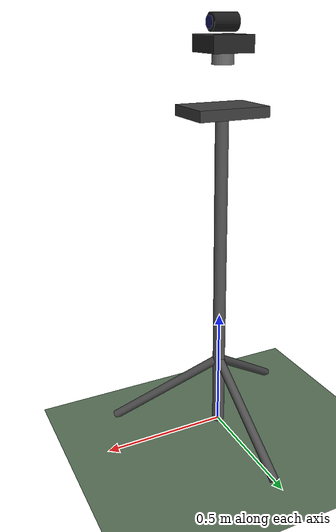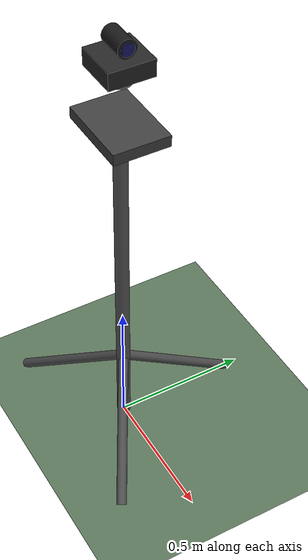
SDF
<sdf version="1.6">
 <world name="drone_sim">
  <plugin name="gazebo_ros_state" filename="libgazebo_ros_state.so">
   <ros><namespace>/gazebo</namespace></ros>
   <update_rate>100.0</update_rate>
  </plugin>
  <light type="directional" name="sun">
   <pose>0 0 100 0 0 0</pose>
   <diffuse>1.0 1.0 1.0 1</diffuse>
   <specular>0.3 0.3 0.3 1</specular>
   <attenuation>
    <range>1000</range>
    <constant>0.9</constant>
    <linear>0.01</linear>
    <quadratic>0.001</quadratic>
   </attenuation>
   <direction>-0.5 0.5 -1.0</direction>
  </light>
  <model name="ground_plane">
   <static>true</static>
   <link name="link">
    <collision name="collision">
     <geometry><plane><normal>0 0 1</normal><size>500 500</size></plane></geometry>
    </collision>
    <visual name="visual">
     <cast_shadows>false</cast_shadows>
     <geometry><plane><normal>0 0 1</normal><size>500 500</size></plane></geometry>
     <material><ambient>0.35 0.45 0.35 1</ambient><diffuse>0.35 0.45 0.35 1</diffuse></material>
    </visual>
   </link>
  </model>
  <model name="sensor_pillar">
   <static>true</static>
   <link name="link">
    <visual name="pole">
     <pose>0 0 0.65 0 0 0</pose>
     <geometry><cylinder><radius>0.025</radius><length>1.3</length></cylinder></geometry>
     <material><ambient>0.3 0.3 0.3 1</ambient><diffuse>0.35 0.35 0.35 1</diffuse></material>
    </visual>
    <visual name="radar_body">
     <pose>0 0 1.55 0 0 0</pose>
     <geometry><box><size>0.16 0.16 0.06</size></box></geometry>
     <material><ambient>0.1 0.1 0.1 1</ambient><diffuse>0.15 0.15 0.15 1</diffuse></material>
    </visual>
    <visual name="top">
     <pose>0 0 1.32 0 0 0</pose>
     <geometry><box><size>0.28 0.20 0.04</size></box></geometry>
     <material><ambient>0.2 0.2 0.2 1</ambient><diffuse>0.25 0.25 0.25 1</diffuse></material>
    </visual>
    <visual name="gimbal_base">
     <pose>0 0 1.50 0 0 0</pose>
     <geometry><cylinder><radius>0.04</radius><length>0.04</length></cylinder></geometry>
     <material><ambient>0.4 0.4 0.4 1</ambient><diffuse>0.45 0.45 0.45 1</diffuse></material>
    </visual>
    <visual name="leg_a">
     <pose>0.0 0.225 0.15 0.983 0 0</pose>
     <geometry><cylinder><radius>0.018</radius><length>0.54</length></cylinder></geometry>
     <material><ambient>0.25 0.25 0.25 1</ambient><diffuse>0.3 0.3 0.3 1</diffuse></material>
    </visual>
    <visual name="leg_b">
     <pose>-0.195 -0.112 0.15 0.983 0 2.094</pose>
     <geometry><cylinder><radius>0.018</radius><length>0.54</length></cylinder></geometry>
     <material><ambient>0.25 0.25 0.25 1</ambient><diffuse>0.3 0.3 0.3 1</diffuse></material>
    </visual>
    <visual name="leg_c">
     <pose>0.195 -0.112 0.15 0.983 0 4.189</pose>
     <geometry><cylinder><radius>0.018</radius><length>0.54</length></cylinder></geometry>
     <material><ambient>0.25 0.25 0.25 1</ambient><diffuse>0.3 0.3 0.3 1</diffuse></material>
    </visual>
    <sensor name="livox_lidar" type="ray">
     <pose>0 0 1.55 0 0 0</pose>
     <update_rate>10</update_rate>
     <always_on>true</always_on>
     <visualize>false</visualize>
     <ray>
      <scan>
       <horizontal>
        <samples>720</samples>
        <resolution>1</resolution>
        <min_angle>-3.14159</min_angle>
        <max_angle>3.14159</max_angle>
       </horizontal>
       <vertical>
        <samples>96</samples>
        <resolution>1</resolution>
        <min_angle>0.0</min_angle>
        <max_angle>0.838</max_angle>
       </vertical>
      </scan>
      <range><min>0.5</min><max>200</max><resolution>0.05</resolution></range>
     </ray>
     <plugin name="lidar_plugin" filename="libgazebo_ros_ray_sensor.so">
      <ros><namespace>/livox</namespace><remapping>~/out:=lidar</remapping></ros>
      <output_type>sensor_msgs/PointCloud2</output_type>
      <frame_name>lidar</frame_name>
     </plugin>
    </sensor>
   </link>
  </model>
  <model name="sensor_head">
   <pose>0 0 1.55 0 0 0</pose>
   <static>true</static>
   <link name="link">
    <visual name="camera_body">
     <pose>0 0 0.07 0 1.5708 0</pose>
     <geometry><cylinder><radius>0.032</radius><length>0.10</length></cylinder></geometry>
     <material><ambient>0.05 0.05 0.05 1</ambient><diffuse>0.1 0.1 0.1 1</diffuse></material>
    </visual>
    <visual name="camera_lens">
     <pose>0.055 0 0.07 0 1.5708 0</pose>
     <geometry><cylinder><radius>0.022</radius><length>0.005</length></cylinder></geometry>
     <material><ambient>0.05 0.05 0.25 1</ambient><diffuse>0.1 0.1 0.4 1</diffuse></material>
    </visual>
    <sensor name="rgb_camera" type="camera">
     <pose>0 0 0.07 0 0 0</pose>
     <update_rate>10</update_rate>
     <always_on>true</always_on>
     <visualize>false</visualize>
     <camera>
      <horizontal_fov>1.8847</horizontal_fov>
      <image><width>2448</width><height>2048</height><format>R8G8B8</format></image>
      <clip><near>0.1</near><far>500</far></clip>
     </camera>
     <plugin name="camera_plugin" filename="libgazebo_ros_camera.so">
      <camera_name>hik_camera</camera_name>
      <frame_name>camera_optical</frame_name>
     </plugin>
    </sensor>
   </link>
  </model>
  <physics type="ode">
   <real_time_update_rate>1000</real_time_update_rate>
   <max_step_size>0.001</max_step_size>
   <real_time_factor>1</real_time_factor>
  </physics>
  <scene>
   <ambient>0.5 0.6 0.6 1</ambient>
   <background>0.5 0.7 0.9 1</background>
   <sky><clouds><speed>8</speed></clouds></sky>
  </scene>
 </world>
</sdf>
